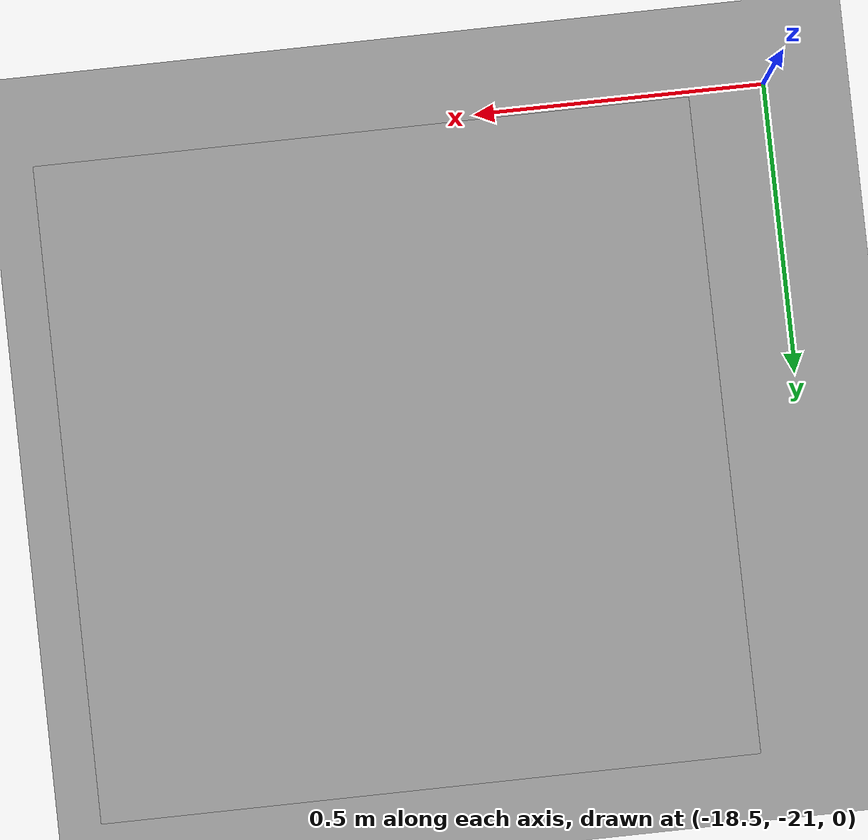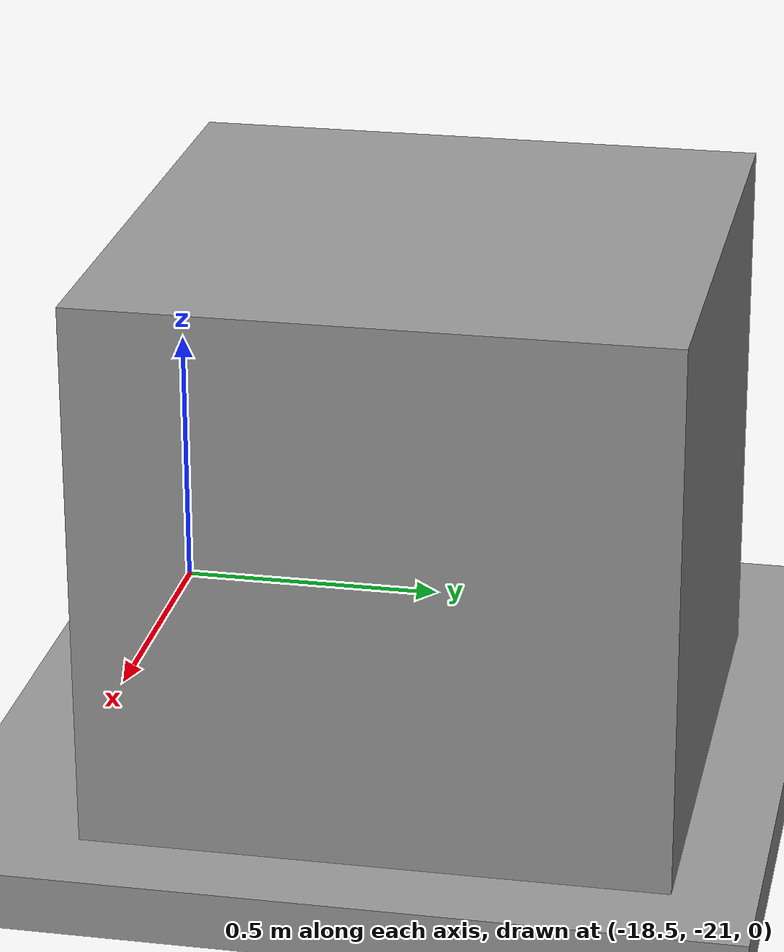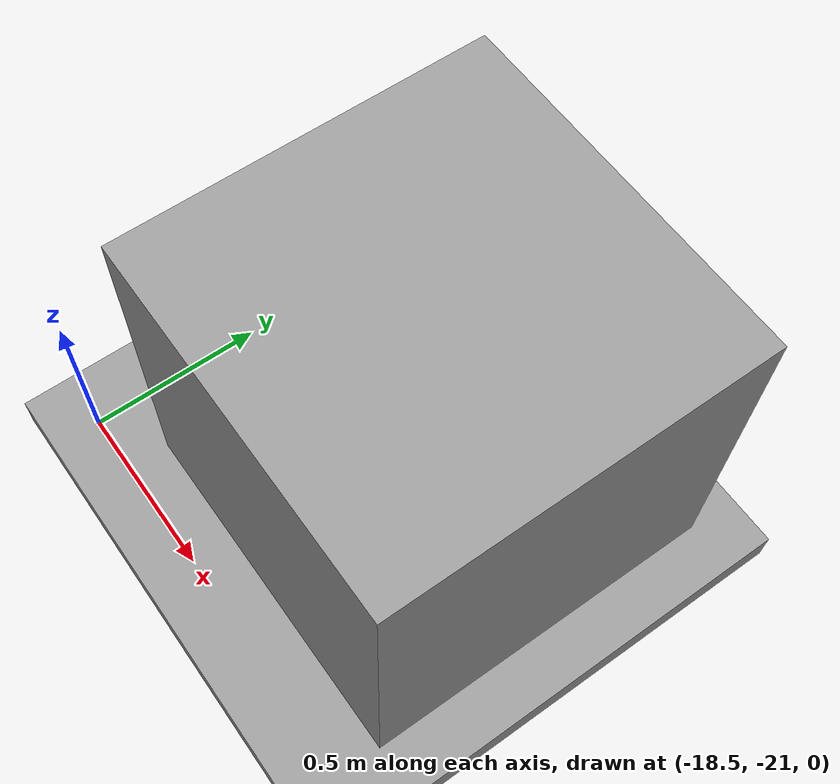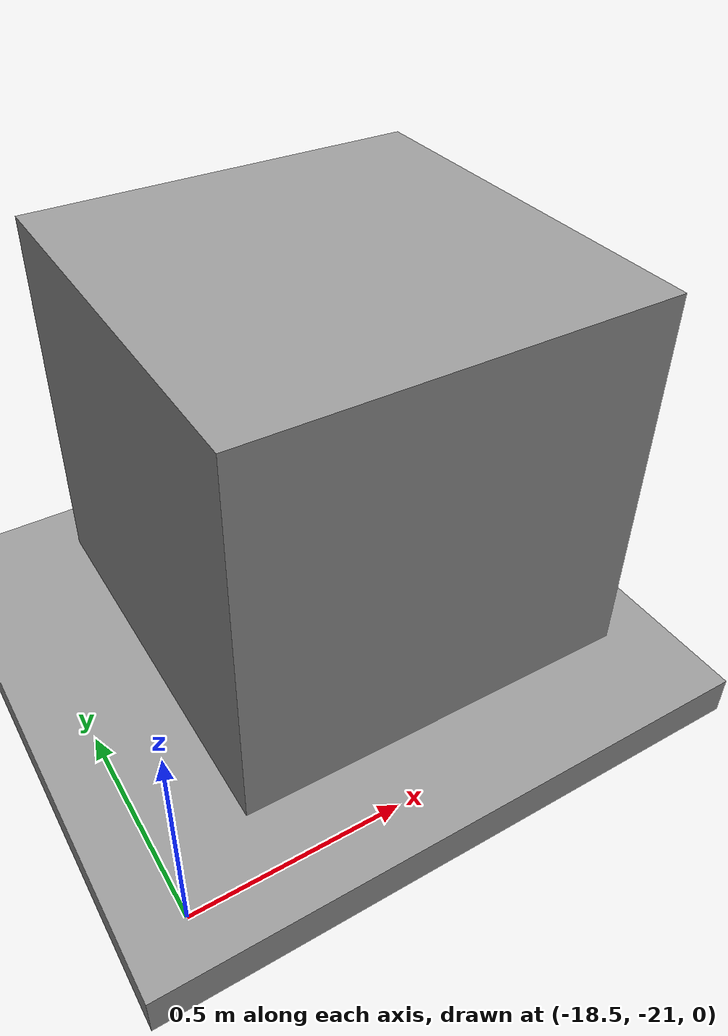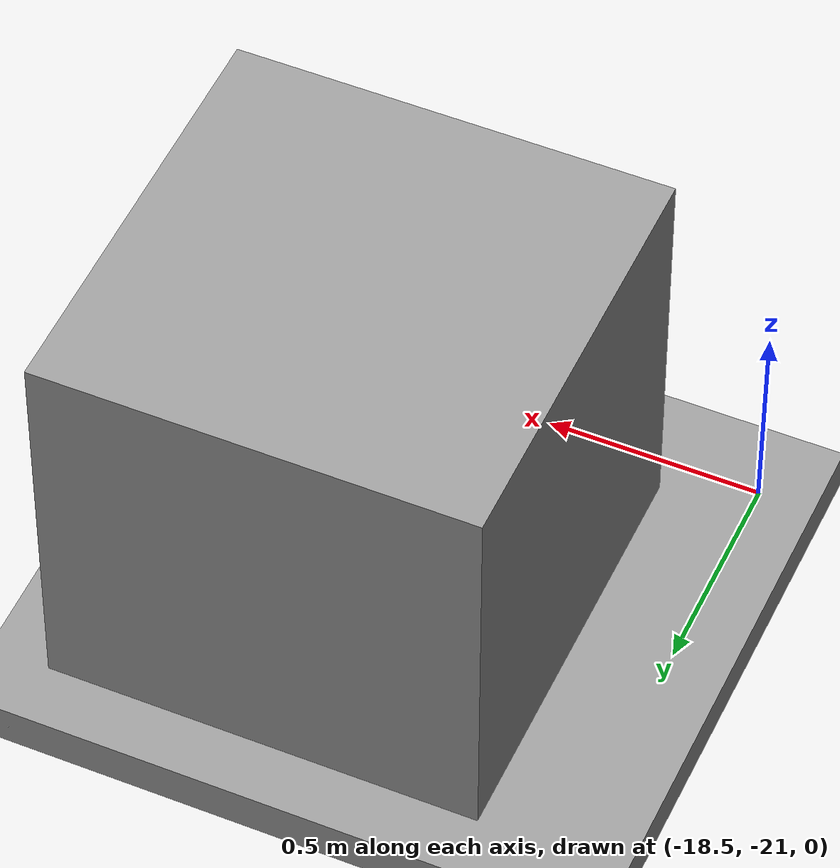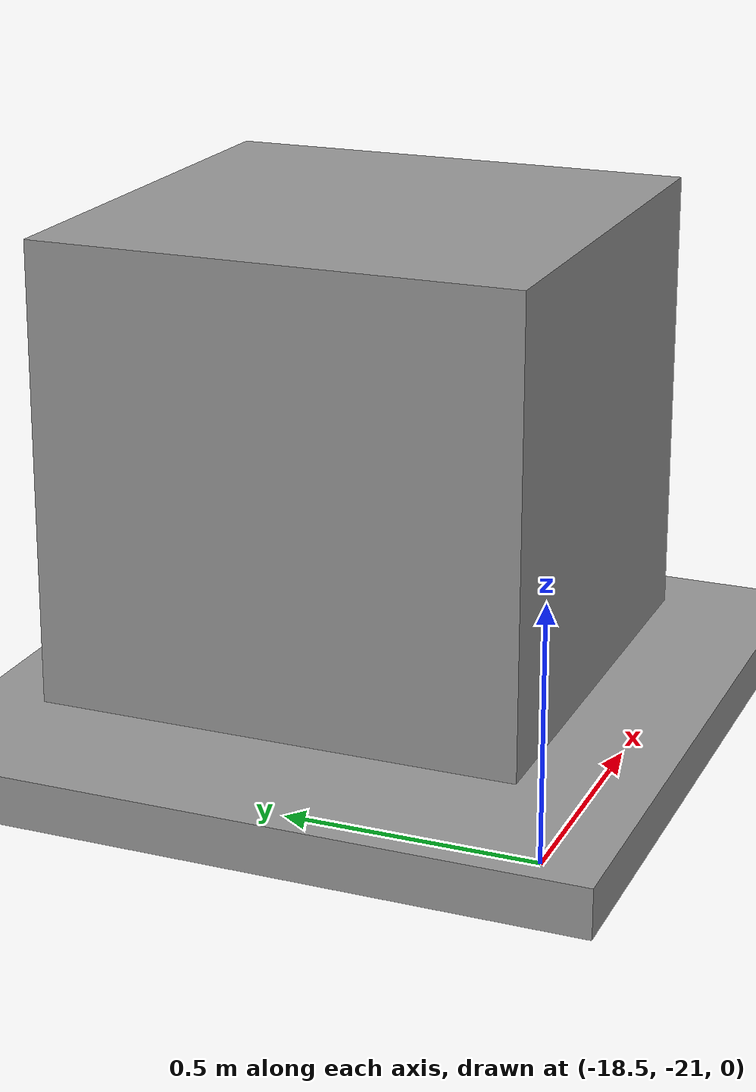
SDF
<sdf version="1.6">
 <world name="default">
  <light name="sun" type="directional">
   <pose>0 0 10 0 -0 0</pose>
   <diffuse>0.8 0.8 0.8 1</diffuse>
   <specular>0.2 0.2 0.2 1</specular>
   <attenuation>
    <range>1000</range>
    <constant>0.9</constant>
    <linear>0.01</linear>
    <quadratic>0.001</quadratic>
   </attenuation>
   <direction>-0.5 0.1 -0.9</direction>
  </light>
  <model name="ground_plane">
   <static>1</static>
   <link name="link">
    <collision name="collision">
     <geometry><plane><normal>0 0 1</normal><size>100 100</size></plane></geometry>
     <surface>
      <contact><collide_bitmask>65535</collide_bitmask></contact>
      <friction><ode><mu>100</mu><mu2>50</mu2></ode></friction>
     </surface>
    </collision>
    <visual name="visual">
     <cast_shadows>0</cast_shadows>
     <geometry><plane><normal>0 0 1</normal><size>100 100</size></plane></geometry>
     <material>
      <script><uri>file://media/materials/scripts/gazebo.material</uri><name>Gazebo/Grey</name></script>
     </material>
    </visual>
   </link>
  </model>
  <gravity>0 0 0</gravity>
  <magnetic_field>6e-06 2.3e-05 -4.2e-05</magnetic_field>
  <atmosphere type="adiabatic"/>
  <physics name="default_physics" default="0" type="ode">
   <max_step_size>0.001</max_step_size>
   <real_time_factor>1</real_time_factor>
   <real_time_update_rate>1000</real_time_update_rate>
  </physics>
  <scene><ambient>0.4 0.4 0.4 1</ambient><background>0.7 0.7 0.7 1</background><shadows>1</shadows></scene>
  <spherical_coordinates>
   <surface_model>EARTH_WGS84</surface_model>
   <latitude_deg>0</latitude_deg>
   <longitude_deg>0</longitude_deg>
   <elevation>0</elevation>
   <heading_deg>0</heading_deg>
  </spherical_coordinates>
  <model name="ground_plane_0">
   <static>1</static>
   <link name="link">
    <collision name="collision">
     <geometry><plane><normal>0 0 1</normal><size>100 100</size></plane></geometry>
     <surface>
      <contact><collide_bitmask>65535</collide_bitmask></contact>
      <friction><ode><mu>100</mu><mu2>50</mu2></ode></friction>
     </surface>
    </collision>
    <visual name="visual">
     <cast_shadows>0</cast_shadows>
     <geometry><plane><normal>0 0 1</normal><size>100 100</size></plane></geometry>
     <material>
      <script><uri>file://media/materials/scripts/gazebo.material</uri><name>Gazebo/Grey</name></script>
     </material>
    </visual>
   </link>
   <pose>13.1096 -9.48059 0 0 -0 0</pose>
  </model>
  <light name="user_point_light_0" type="point">
   <pose>1262.7 -526.336 1 0 -0 0</pose>
   <diffuse>0.5 0.5 0.5 1</diffuse>
   <specular>0.1 0.1 0.1 1</specular>
   <attenuation>
    <range>20</range>
    <constant>0.5</constant>
    <linear>0.01</linear>
    <quadratic>0.001</quadratic>
   </attenuation>
   <cast_shadows>0</cast_shadows>
   <direction>0 0 -1</direction>
  </light>
  <light name="user_point_light_1" type="point">
   <pose>-15.9322 21.3025 1 0 -0 0</pose>
   <diffuse>0.5 0.5 0.5 1</diffuse>
   <specular>0.1 0.1 0.1 1</specular>
   <attenuation>
    <range>20</range>
    <constant>0.5</constant>
    <linear>0.01</linear>
    <quadratic>0.001</quadratic>
   </attenuation>
   <cast_shadows>0</cast_shadows>
   <direction>0 0 -1</direction>
  </light>
  <light name="user_point_light_2" type="point">
   <pose>19.403 28.5143 1 0 -0 0</pose>
   <diffuse>0.5 0.5 0.5 1</diffuse>
   <specular>0.1 0.1 0.1 1</specular>
   <attenuation>
    <range>20</range>
    <constant>0.5</constant>
    <linear>0.01</linear>
    <quadratic>0.001</quadratic>
   </attenuation>
   <cast_shadows>0</cast_shadows>
   <direction>0 0 -1</direction>
  </light>
  <model name="unit_box">
   <pose>-17.8078 -20.3869 0.5 0 -0 0</pose>
   <link name="link">
    <inertial>
     <mass>1</mass>
     <inertia>
      <ixx>0.166667</ixx>
      <ixy>0</ixy>
      <ixz>0</ixz>
      <iyy>0.166667</iyy>
      <iyz>0</iyz>
      <izz>0.166667</izz>
     </inertia>
    </inertial>
    <collision name="collision"><geometry><box><size>1 1 1</size></box></geometry></collision>
    <visual name="visual">
     <geometry><box><size>1 1 1</size></box></geometry>
     <material>
      <script><name>Gazebo/Grey</name><uri>file://media/materials/scripts/gazebo.material</uri></script>
     </material>
    </visual>
   </link>
  </model>
 </world>
</sdf>
